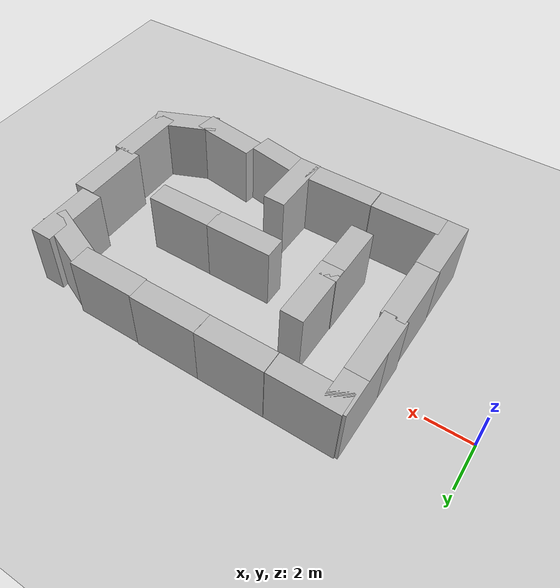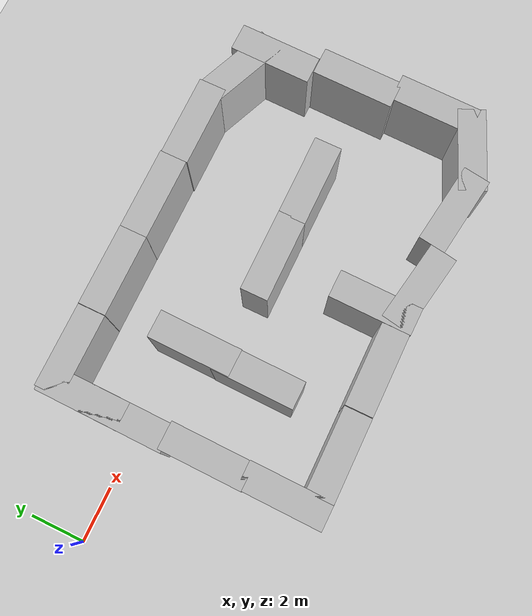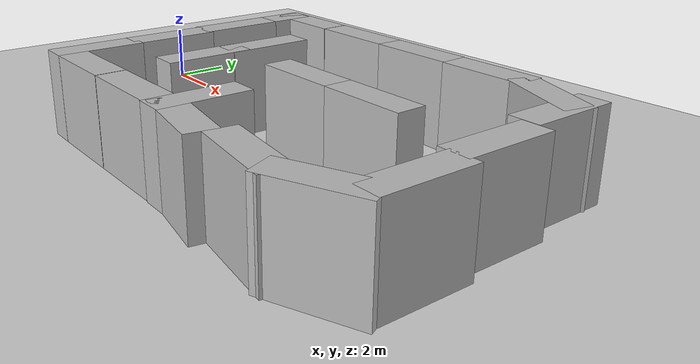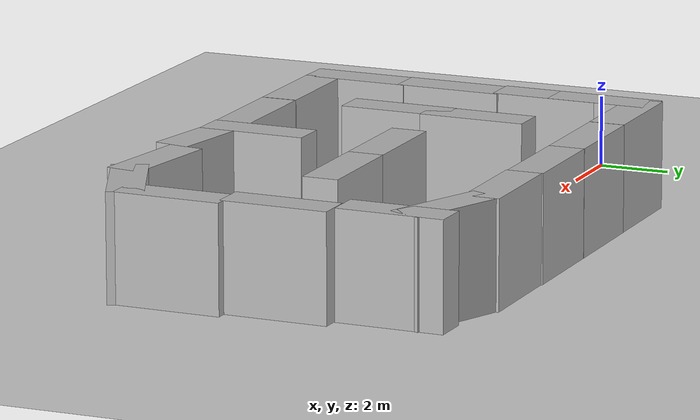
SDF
<sdf version="1.7">
 <world name="default">
  <light name="sun" type="directional">
   <pose>0 0 10 0 -0 0</pose>
   <diffuse>0.8 0.8 0.8 1</diffuse>
   <specular>0.2 0.2 0.2 1</specular>
   <attenuation>
    <range>1000</range>
    <constant>0.9</constant>
    <linear>0.01</linear>
    <quadratic>0.001</quadratic>
   </attenuation>
   <direction>-0.5 0.1 -0.9</direction>
   <spot><inner_angle>0</inner_angle><outer_angle>0</outer_angle><falloff>0</falloff></spot>
  </light>
  <model name="ground_plane">
   <static>1</static>
   <link name="link">
    <collision name="collision">
     <geometry><plane><normal>0 0 1</normal><size>100 100</size></plane></geometry>
     <surface>
      <contact><collide_bitmask>65535</collide_bitmask></contact>
      <friction><ode><mu>100</mu><mu2>50</mu2></ode></friction>
     </surface>
    </collision>
    <visual name="visual">
     <cast_shadows>0</cast_shadows>
     <geometry><plane><normal>0 0 1</normal><size>100 100</size></plane></geometry>
     <material>
      <script><uri>file://media/materials/scripts/gazebo.material</uri><name>Gazebo/Grey</name></script>
     </material>
    </visual>
   </link>
  </model>
  <gravity>0 0 -9.8</gravity>
  <magnetic_field>6e-06 2.3e-05 -4.2e-05</magnetic_field>
  <atmosphere type="adiabatic"/>
  <physics type="ode">
   <max_step_size>0.001</max_step_size>
   <real_time_factor>1</real_time_factor>
   <real_time_update_rate>1000</real_time_update_rate>
  </physics>
  <scene><ambient>0.4 0.4 0.4 1</ambient><background>0.7 0.7 0.7 1</background><shadows>1</shadows></scene>
  <spherical_coordinates>
   <surface_model>EARTH_WGS84</surface_model>
   <latitude_deg>0</latitude_deg>
   <longitude_deg>0</longitude_deg>
   <elevation>0</elevation>
   <heading_deg>0</heading_deg>
  </spherical_coordinates>
  <model name="brick_box_3x1x3">
   <static>1</static>
   <link name="chassis">
    <pose>0 0 1.5 0 -0 0</pose>
    <collision name="collision"><geometry><box><size>3 1 3</size></box></geometry></collision>
    <visual name="visual">
     <geometry><mesh><uri>model://brick_box_3x1x3/meshes/simple_box.dae</uri><scale>3 1 3</scale></mesh></geometry>
     <material>
      <script>
       <uri>model://brick_box_3x1x3/materials/scripts</uri>
       <uri>model://brick_box_3x1x3/materials/textures</uri>
       <name>BrickBox/Diffuse</name>
      </script>
     </material>
    </visual>
   </link>
   <pose>6.24661 -6.56489 0 0 -0 0</pose>
  </model>
  <model name="brick_box_3x1x3_0">
   <static>1</static>
   <link name="chassis">
    <pose>0 0 1.5 0 -0 0</pose>
    <collision name="collision"><geometry><box><size>3 1 3</size></box></geometry></collision>
    <visual name="visual">
     <geometry><mesh><uri>model://brick_box_3x1x3/meshes/simple_box.dae</uri><scale>3 1 3</scale></mesh></geometry>
     <material>
      <script>
       <uri>model://brick_box_3x1x3/materials/scripts</uri>
       <uri>model://brick_box_3x1x3/materials/textures</uri>
       <name>BrickBox/Diffuse</name>
      </script>
     </material>
    </visual>
   </link>
   <pose>9.26993 -6.56359 0 0 -0 0</pose>
  </model>
  <model name="brick_box_3x1x3_1">
   <static>1</static>
   <link name="chassis">
    <pose>0 0 1.5 0 -0 0</pose>
    <collision name="collision"><geometry><box><size>3 1 3</size></box></geometry></collision>
    <visual name="visual">
     <geometry><mesh><uri>model://brick_box_3x1x3/meshes/simple_box.dae</uri><scale>3 1 3</scale></mesh></geometry>
     <material>
      <script>
       <uri>model://brick_box_3x1x3/materials/scripts</uri>
       <uri>model://brick_box_3x1x3/materials/textures</uri>
       <name>BrickBox/Diffuse</name>
      </script>
     </material>
    </visual>
   </link>
   <pose>11.2842 -5.59818 0 0 0 -1.58618</pose>
  </model>
  <model name="brick_box_3x1x3_1_clone_1">
   <static>1</static>
   <link name="chassis">
    <pose>0 0 1.5 0 -0 0</pose>
    <collision name="collision"><geometry><box><size>3 1 3</size></box></geometry></collision>
    <visual name="visual">
     <geometry><mesh><uri>model://brick_box_3x1x3/meshes/simple_box.dae</uri><scale>3 1 3</scale></mesh></geometry>
     <material>
      <script>
       <uri>model://brick_box_3x1x3/materials/scripts</uri>
       <uri>model://brick_box_3x1x3/materials/textures</uri>
       <name>BrickBox/Diffuse</name>
      </script>
     </material>
    </visual>
   </link>
   <pose>4.38546 -2.74368 0 0 0 -1.58618</pose>
  </model>
  <model name="brick_box_3x1x3_1_clone_11">
   <static>1</static>
   <link name="chassis">
    <pose>0 0 1.5 0 -0 0</pose>
    <collision name="collision"><geometry><box><size>3 1 3</size></box></geometry></collision>
    <visual name="visual">
     <geometry><mesh><uri>model://brick_box_3x1x3/meshes/simple_box.dae</uri><scale>3 1 3</scale></mesh></geometry>
     <material>
      <script>
       <uri>model://brick_box_3x1x3/materials/scripts</uri>
       <uri>model://brick_box_3x1x3/materials/textures</uri>
       <name>BrickBox/Diffuse</name>
      </script>
     </material>
    </visual>
   </link>
   <pose>18.0278 1.29455 0 0 0 -1.58618</pose>
  </model>
  <model name="brick_box_3x1x3_1_clone_12">
   <static>1</static>
   <link name="chassis">
    <pose>0 0 1.5 0 -0 0</pose>
    <collision name="collision"><geometry><box><size>3 1 3</size></box></geometry></collision>
    <visual name="visual">
     <geometry><mesh><uri>model://brick_box_3x1x3/meshes/simple_box.dae</uri><scale>3 1 3</scale></mesh></geometry>
     <material>
      <script>
       <uri>model://brick_box_3x1x3/materials/scripts</uri>
       <uri>model://brick_box_3x1x3/materials/textures</uri>
       <name>BrickBox/Diffuse</name>
      </script>
     </material>
    </visual>
   </link>
   <pose>18.4314 -1.73516 0 0 0 -1.58618</pose>
  </model>
  <model name="brick_box_3x1x3_1_clone_13">
   <static>1</static>
   <link name="chassis">
    <pose>0 0 1.5 0 -0 0</pose>
    <collision name="collision"><geometry><box><size>3 1 3</size></box></geometry></collision>
    <visual name="visual">
     <geometry><mesh><uri>model://brick_box_3x1x3/meshes/simple_box.dae</uri><scale>3 1 3</scale></mesh></geometry>
     <material>
      <script>
       <uri>model://brick_box_3x1x3/materials/scripts</uri>
       <uri>model://brick_box_3x1x3/materials/textures</uri>
       <name>BrickBox/Diffuse</name>
      </script>
     </material>
    </visual>
   </link>
   <pose>18.6797 -4.62676 0 0 0 -1.58618</pose>
  </model>
  <model name="brick_box_3x1x3_0_clone_14">
   <static>1</static>
   <link name="chassis">
    <pose>0 0 1.5 0 -0 0</pose>
    <collision name="collision"><geometry><box><size>3 1 3</size></box></geometry></collision>
    <visual name="visual">
     <geometry><mesh><uri>model://brick_box_3x1x3/meshes/simple_box.dae</uri><scale>3 1 3</scale></mesh></geometry>
     <material>
      <script>
       <uri>model://brick_box_3x1x3/materials/scripts</uri>
       <uri>model://brick_box_3x1x3/materials/textures</uri>
       <name>BrickBox/Diffuse</name>
      </script>
     </material>
    </visual>
   </link>
   <pose>15.3956 -6.71422 0 0 0 -0.142833</pose>
  </model>
  <model name="brick_box_3x1x3_0_clone_15">
   <static>1</static>
   <link name="chassis">
    <pose>0 0 1.5 0 -0 0</pose>
    <collision name="collision"><geometry><box><size>3 1 3</size></box></geometry></collision>
    <visual name="visual">
     <geometry><mesh><uri>model://brick_box_3x1x3/meshes/simple_box.dae</uri><scale>3 1 3</scale></mesh></geometry>
     <material>
      <script>
       <uri>model://brick_box_3x1x3/materials/scripts</uri>
       <uri>model://brick_box_3x1x3/materials/textures</uri>
       <name>BrickBox/Diffuse</name>
      </script>
     </material>
    </visual>
   </link>
   <pose>12.3678 -6.71439 0 0 0 -0.174669</pose>
  </model>
  <model name="brick_box_3x1x3_0_clone_13_clone_1">
   <static>1</static>
   <link name="chassis">
    <pose>0 0 1.5 0 -0 0</pose>
    <collision name="collision"><geometry><box><size>3 1 3</size></box></geometry></collision>
    <visual name="visual">
     <geometry><mesh><uri>model://brick_box_3x1x3/meshes/simple_box.dae</uri><scale>3 1 3</scale></mesh></geometry>
     <material>
      <script>
       <uri>model://brick_box_3x1x3/materials/scripts</uri>
       <uri>model://brick_box_3x1x3/materials/textures</uri>
       <name>BrickBox/Diffuse</name>
      </script>
     </material>
    </visual>
   </link>
   <pose>14.491 2.76728 0 0 -0 0</pose>
  </model>
  <model name="brick_box_3x1x3_0_clone_13_clone_2">
   <static>1</static>
   <link name="chassis">
    <pose>0 0 1.5 0 -0 0</pose>
    <collision name="collision"><geometry><box><size>3 1 3</size></box></geometry></collision>
    <visual name="visual">
     <geometry><mesh><uri>model://brick_box_3x1x3/meshes/simple_box.dae</uri><scale>3 1 3</scale></mesh></geometry>
     <material>
      <script>
       <uri>model://brick_box_3x1x3/materials/scripts</uri>
       <uri>model://brick_box_3x1x3/materials/textures</uri>
       <name>BrickBox/Diffuse</name>
      </script>
     </material>
    </visual>
   </link>
   <pose>11.5022 2.80166 0 0 -0 0</pose>
  </model>
  <model name="brick_box_3x1x3_0_clone_13_clone_3">
   <static>1</static>
   <link name="chassis">
    <pose>0 0 1.5 0 -0 0</pose>
    <collision name="collision"><geometry><box><size>3 1 3</size></box></geometry></collision>
    <visual name="visual">
     <geometry><mesh><uri>model://brick_box_3x1x3/meshes/simple_box.dae</uri><scale>3 1 3</scale></mesh></geometry>
     <material>
      <script>
       <uri>model://brick_box_3x1x3/materials/scripts</uri>
       <uri>model://brick_box_3x1x3/materials/textures</uri>
       <name>BrickBox/Diffuse</name>
      </script>
     </material>
    </visual>
   </link>
   <pose>8.52566 2.80451 0 0 -0 0</pose>
  </model>
  <model name="brick_box_3x1x3_0_clone_13_clone_4">
   <static>1</static>
   <link name="chassis">
    <pose>0 0 1.5 0 -0 0</pose>
    <collision name="collision"><geometry><box><size>3 1 3</size></box></geometry></collision>
    <visual name="visual">
     <geometry><mesh><uri>model://brick_box_3x1x3/meshes/simple_box.dae</uri><scale>3 1 3</scale></mesh></geometry>
     <material>
      <script>
       <uri>model://brick_box_3x1x3/materials/scripts</uri>
       <uri>model://brick_box_3x1x3/materials/textures</uri>
       <name>BrickBox/Diffuse</name>
      </script>
     </material>
    </visual>
   </link>
   <pose>5.51232 2.79764 0 0 -0 0</pose>
  </model>
  <model name="brick_box_3x1x3_1_clone_14">
   <static>1</static>
   <link name="chassis">
    <pose>0 0 1.5 0 -0 0</pose>
    <collision name="collision"><geometry><box><size>3 1 3</size></box></geometry></collision>
    <visual name="visual">
     <geometry><mesh><uri>model://brick_box_3x1x3/meshes/simple_box.dae</uri><scale>3 1 3</scale></mesh></geometry>
     <material>
      <script>
       <uri>model://brick_box_3x1x3/materials/scripts</uri>
       <uri>model://brick_box_3x1x3/materials/textures</uri>
       <name>BrickBox/Diffuse</name>
      </script>
     </material>
    </visual>
   </link>
   <pose>4.36491 1.73074 0 0 0 -1.58618</pose>
  </model>
  <model name="brick_box_3x1x3_1_clone_15">
   <static>1</static>
   <link name="chassis">
    <pose>0 0 1.5 0 -0 0</pose>
    <collision name="collision"><geometry><box><size>3 1 3</size></box></geometry></collision>
    <visual name="visual">
     <geometry><mesh><uri>model://brick_box_3x1x3/meshes/simple_box.dae</uri><scale>3 1 3</scale></mesh></geometry>
     <material>
      <script>
       <uri>model://brick_box_3x1x3/materials/scripts</uri>
       <uri>model://brick_box_3x1x3/materials/textures</uri>
       <name>BrickBox/Diffuse</name>
      </script>
     </material>
    </visual>
   </link>
   <pose>4.34482 0.107225 0 0 0 -1.58618</pose>
  </model>
  <model name="brick_box_3x1x3_1_clone_16">
   <static>1</static>
   <link name="chassis">
    <pose>0 0 1.5 0 -0 0</pose>
    <collision name="collision"><geometry><box><size>3 1 3</size></box></geometry></collision>
    <visual name="visual">
     <geometry><mesh><uri>model://brick_box_3x1x3/meshes/simple_box.dae</uri><scale>3 1 3</scale></mesh></geometry>
     <material>
      <script>
       <uri>model://brick_box_3x1x3/materials/scripts</uri>
       <uri>model://brick_box_3x1x3/materials/textures</uri>
       <name>BrickBox/Diffuse</name>
      </script>
     </material>
    </visual>
   </link>
   <pose>4.36243 -5.55913 0 0 0 -1.58618</pose>
  </model>
  <model name="brick_box_3x1x3_clone_1_clone_0">
   <static>1</static>
   <link name="chassis">
    <pose>0 0 1.5 0 -0 0</pose>
    <collision name="collision"><geometry><box><size>3 1 3</size></box></geometry></collision>
    <visual name="visual">
     <geometry><mesh><uri>model://brick_box_3x1x3/meshes/simple_box.dae</uri><scale>3 1 3</scale></mesh></geometry>
     <material>
      <script>
       <uri>model://brick_box_3x1x3/materials/scripts</uri>
       <uri>model://brick_box_3x1x3/materials/textures</uri>
       <name>BrickBox/Diffuse</name>
      </script>
     </material>
    </visual>
   </link>
   <pose>14.2366 -1.83126 0 0 -0 0</pose>
  </model>
  <model name="brick_box_3x1x3_1_clone_16_clone_7">
   <static>1</static>
   <link name="chassis">
    <pose>0 0 1.5 0 -0 0</pose>
    <collision name="collision"><geometry><box><size>3 1 3</size></box></geometry></collision>
    <visual name="visual">
     <geometry><mesh><uri>model://brick_box_3x1x3/meshes/simple_box.dae</uri><scale>3 1 3</scale></mesh></geometry>
     <material>
      <script>
       <uri>model://brick_box_3x1x3/materials/scripts</uri>
       <uri>model://brick_box_3x1x3/materials/textures</uri>
       <name>BrickBox/Diffuse</name>
      </script>
     </material>
    </visual>
   </link>
   <pose>7.47741 -0.781365 0 0 0 -1.58618</pose>
  </model>
  <model name="brick_box_3x1x3_1_clone_16_clone_clone_4">
   <static>1</static>
   <link name="chassis">
    <pose>0 0 1.5 0 -0 0</pose>
    <collision name="collision"><geometry><box><size>3 1 3</size></box></geometry></collision>
    <visual name="visual">
     <geometry><mesh><uri>model://brick_box_3x1x3/meshes/simple_box.dae</uri><scale>3 1 3</scale></mesh></geometry>
     <material>
      <script>
       <uri>model://brick_box_3x1x3/materials/scripts</uri>
       <uri>model://brick_box_3x1x3/materials/textures</uri>
       <name>BrickBox/Diffuse</name>
      </script>
     </material>
    </visual>
   </link>
   <pose>7.41975 -3.12621 0 0 0 -1.58618</pose>
  </model>
  <model name="brick_box_3x1x3_clone_1_clone_0_clone">
   <static>1</static>
   <link name="chassis">
    <pose>0 0 1.5 0 -0 0</pose>
    <collision name="collision"><geometry><box><size>3 1 3</size></box></geometry></collision>
    <visual name="visual">
     <geometry><mesh><uri>model://brick_box_3x1x3/meshes/simple_box.dae</uri><scale>3 1 3</scale></mesh></geometry>
     <material>
      <script>
       <uri>model://brick_box_3x1x3/materials/scripts</uri>
       <uri>model://brick_box_3x1x3/materials/textures</uri>
       <name>BrickBox/Diffuse</name>
      </script>
     </material>
    </visual>
   </link>
   <pose>11.285 -1.82965 0 0 -0 0</pose>
  </model>
  <model name="brick_box_3x1x3_1_clone_13_clone">
   <static>1</static>
   <link name="chassis">
    <pose>0 0 1.5 0 -0 0</pose>
    <collision name="collision"><geometry><box><size>3 1 3</size></box></geometry></collision>
    <visual name="visual">
     <geometry><mesh><uri>model://brick_box_3x1x3/meshes/simple_box.dae</uri><scale>3 1 3</scale></mesh></geometry>
     <material>
      <script>
       <uri>model://brick_box_3x1x3/materials/scripts</uri>
       <uri>model://brick_box_3x1x3/materials/textures</uri>
       <name>BrickBox/Diffuse</name>
      </script>
     </material>
    </visual>
   </link>
   <pose>17.6716 -6.4231 0 0 0 -2.73821</pose>
  </model>
  <model name="brick_box_3x1x3_1_clone_13_clone_0">
   <static>1</static>
   <link name="chassis">
    <pose>0 0 1.5 0 -0 0</pose>
    <collision name="collision"><geometry><box><size>3 1 3</size></box></geometry></collision>
    <visual name="visual">
     <geometry><mesh><uri>model://brick_box_3x1x3/meshes/simple_box.dae</uri><scale>3 1 3</scale></mesh></geometry>
     <material>
      <script>
       <uri>model://brick_box_3x1x3/materials/scripts</uri>
       <uri>model://brick_box_3x1x3/materials/textures</uri>
       <name>BrickBox/Diffuse</name>
      </script>
     </material>
    </visual>
   </link>
   <pose>17.0111 2.22266 0 0 0 -0.396183</pose>
  </model>
 </world>
</sdf>
